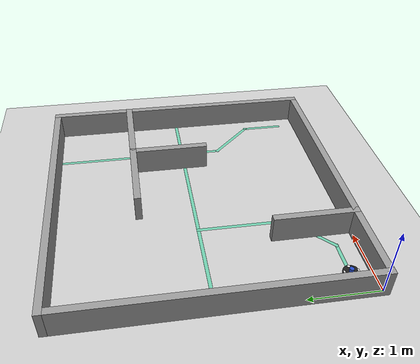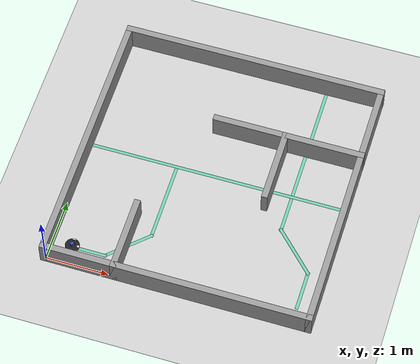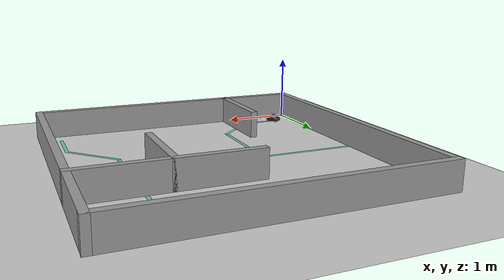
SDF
<sdf version="1.7">
 <world name="default">
  <light name="sun" type="directional">
   <pose>0 0 10 0 -0 0</pose>
   <diffuse>0.8 0.8 0.8 1</diffuse>
   <specular>0.2 0.2 0.2 1</specular>
   <attenuation>
    <range>1000</range>
    <constant>0.9</constant>
    <linear>0.01</linear>
    <quadratic>0.001</quadratic>
   </attenuation>
   <direction>-0.5 0.1 -0.9</direction>
   <spot><inner_angle>0</inner_angle><outer_angle>0</outer_angle><falloff>0</falloff></spot>
  </light>
  <model name="ground_plane">
   <static>1</static>
   <link name="link">
    <collision name="collision">
     <geometry><plane><normal>0 0 1</normal><size>100 100</size></plane></geometry>
     <surface><friction><ode><mu>100</mu><mu2>50</mu2></ode></friction></surface>
    </collision>
    <visual name="visual">
     <cast_shadows>0</cast_shadows>
     <geometry><plane><normal>0 0 1</normal><size>100 100</size></plane></geometry>
     <material>
      <script><uri>file://media/materials/scripts/gazebo.material</uri><name>Gazebo/Grey</name></script>
     </material>
    </visual>
   </link>
  </model>
  <gravity>0 0 -9.8</gravity>
  <magnetic_field>6e-06 2.3e-05 -4.2e-05</magnetic_field>
  <atmosphere type="adiabatic"/>
  <physics type="ode">
   <max_step_size>0.001</max_step_size>
   <real_time_factor>1</real_time_factor>
   <real_time_update_rate>1000</real_time_update_rate>
  </physics>
  <scene><ambient>0.4 0.4 0.4 1</ambient><background>0.7 0.7 0.7 1</background><shadows>1</shadows></scene>
  <audio><device>default</device></audio>
  <spherical_coordinates>
   <surface_model>EARTH_WGS84</surface_model>
   <latitude_deg>0</latitude_deg>
   <longitude_deg>0</longitude_deg>
   <elevation>0</elevation>
   <heading_deg>0</heading_deg>
  </spherical_coordinates>
  <model name="CM">
   <pose>2.06604 2.07657 0 0 -0 0</pose>
   <link name="Wall_0">
    <collision name="Wall_0_Collision">
     <geometry><box><size>4.267 0.1 0.4</size></box></geometry>
     <pose>0 0 0.2 0 -0 0</pose>
    </collision>
    <visual name="Wall_0_Visual">
     <pose>0 0 0.2 0 -0 0</pose>
     <geometry><box><size>4.267 0.1 0.4</size></box></geometry>
     <material>
      <script><uri>file://media/materials/scripts/gazebo.material</uri><name>Gazebo/Grey</name></script>
      <ambient>1 1 1 1</ambient>
     </material>
     <meta><layer>0</layer></meta>
    </visual>
    <pose>2.0835 0 0 0 -0 1.5708</pose>
   </link>
   <link name="Wall_1">
    <collision name="Wall_1_Collision">
     <geometry><box><size>4.267 0.1 0.4</size></box></geometry>
     <pose>0 0 0.2 0 -0 0</pose>
    </collision>
    <visual name="Wall_1_Visual">
     <pose>0 0 0.2 0 -0 0</pose>
     <geometry><box><size>4.267 0.1 0.4</size></box></geometry>
     <material>
      <script><uri>file://media/materials/scripts/gazebo.material</uri><name>Gazebo/Grey</name></script>
      <ambient>1 1 1 1</ambient>
     </material>
     <meta><layer>0</layer></meta>
    </visual>
    <pose>0 2.0835 0 0 -0 3.14159</pose>
   </link>
   <link name="Wall_2">
    <collision name="Wall_2_Collision">
     <geometry><box><size>4.267 0.1 0.4</size></box></geometry>
     <pose>0 0 0.2 0 -0 0</pose>
    </collision>
    <visual name="Wall_2_Visual">
     <pose>0 0 0.2 0 -0 0</pose>
     <geometry><box><size>4.267 0.1 0.4</size></box></geometry>
     <material>
      <script><uri>file://media/materials/scripts/gazebo.material</uri><name>Gazebo/Grey</name></script>
      <ambient>1 1 1 1</ambient>
     </material>
     <meta><layer>0</layer></meta>
    </visual>
    <pose>-2.0835 0 0 0 -0 -1.5708</pose>
   </link>
   <link name="Wall_3">
    <collision name="Wall_3_Collision">
     <geometry><box><size>4.267 0.1 0.4</size></box></geometry>
     <pose>0 0 0.2 0 -0 0</pose>
    </collision>
    <visual name="Wall_3_Visual">
     <pose>0 0 0.2 0 -0 0</pose>
     <geometry><box><size>4.267 0.1 0.4</size></box></geometry>
     <material>
      <script><uri>file://media/materials/scripts/gazebo.material</uri><name>Gazebo/Grey</name></script>
      <ambient>1 1 1 1</ambient>
     </material>
     <meta><layer>0</layer></meta>
    </visual>
    <pose>0 -2.0835 0 0 -0 0</pose>
   </link>
   <link name="Wall_32">
    <collision name="Wall_32_Collision"><geometry><box><size>0.61 0.05 0</size></box></geometry></collision>
    <visual name="Wall_32_Visual">
     <geometry><box><size>0.61 0.05 0</size></box></geometry>
     <material>
      <script><uri>file://media/materials/scripts/gazebo.material</uri><name>Gazebo/Grey</name></script>
      <ambient>0.435294 0.796078 0.67451 1</ambient>
     </material>
     <meta><layer>0</layer></meta>
    </visual>
    <pose>-1.4985 -1.7785 0 0 -0 0</pose>
   </link>
   <link name="Wall_34">
    <collision name="Wall_34_Collision"><geometry><box><size>0.835175 0.05 0</size></box></geometry></collision>
    <visual name="Wall_34_Visual">
     <geometry><box><size>0.835175 0.05 0</size></box></geometry>
     <material>
      <script><uri>file://media/materials/scripts/gazebo.material</uri><name>Gazebo/Grey</name></script>
      <ambient>0.435294 0.796078 0.67451 1</ambient>
     </material>
     <meta><layer>0</layer></meta>
    </visual>
    <pose>-0.9335 -1.5085 0 0 -0 0.758378</pose>
   </link>
   <link name="Wall_36">
    <collision name="Wall_36_Collision"><geometry><box><size>1.33876 0.05 0</size></box></geometry></collision>
    <visual name="Wall_36_Visual">
     <geometry><box><size>1.33876 0.05 0</size></box></geometry>
     <material>
      <script><uri>file://media/materials/scripts/gazebo.material</uri><name>Gazebo/Grey</name></script>
      <ambient>0.435294 0.796078 0.67451 1</ambient>
     </material>
     <meta><layer>0</layer></meta>
    </visual>
    <pose>-0.6485 -0.594 0 0 -0 1.5708</pose>
   </link>
   <link name="Wall_38">
    <collision name="Wall_38_Collision"><geometry><box><size>4.2 0.05 0</size></box></geometry></collision>
    <visual name="Wall_38_Visual">
     <geometry><box><size>4.2 0.05 0</size></box></geometry>
     <material>
      <script><uri>file://media/materials/scripts/gazebo.material</uri><name>Gazebo/Grey</name></script>
      <ambient>0.435294 0.796078 0.67451 1</ambient>
     </material>
     <meta><layer>0</layer></meta>
    </visual>
    <pose>-0.0085 0.0505 0 0 -0 0</pose>
   </link>
   <link name="Wall_40">
    <collision name="Wall_40_Collision"><geometry><box><size>2.676 0.05 0</size></box></geometry></collision>
    <visual name="Wall_40_Visual">
     <geometry><box><size>2.676 0.05 0</size></box></geometry>
     <material>
      <script><uri>file://media/materials/scripts/gazebo.material</uri><name>Gazebo/Grey</name></script>
      <ambient>0.435294 0.796078 0.67451 1</ambient>
     </material>
     <meta><layer>0</layer></meta>
    </visual>
    <pose>1.2175 0.7535 0 0 -0 1.5708</pose>
   </link>
   <link name="Wall_42">
    <collision name="Wall_42_Collision"><geometry><box><size>0.904927 0.05 0</size></box></geometry></collision>
    <visual name="Wall_42_Visual">
     <geometry><box><size>0.904927 0.05 0</size></box></geometry>
     <material>
      <script><uri>file://media/materials/scripts/gazebo.material</uri><name>Gazebo/Grey</name></script>
      <ambient>0.435294 0.796078 0.67451 1</ambient>
     </material>
     <meta><layer>0</layer></meta>
    </visual>
    <pose>1.517 -0.8645 0 0 -0 -0.794496</pose>
   </link>
   <link name="Wall_44">
    <collision name="Wall_44_Collision"><geometry><box><size>0.659 0.05 0</size></box></geometry></collision>
    <visual name="Wall_44_Visual">
     <geometry><box><size>0.659 0.05 0</size></box></geometry>
     <material>
      <script><uri>file://media/materials/scripts/gazebo.material</uri><name>Gazebo/Grey</name></script>
      <ambient>0.435294 0.796078 0.67451 1</ambient>
     </material>
     <meta><layer>0</layer></meta>
    </visual>
    <pose>1.8165 -1.474 0 0 -0 -1.5708</pose>
   </link>
   <link name="Wall_5">
    <collision name="Wall_5_Collision">
     <geometry><box><size>1.219 0.1 0.4</size></box></geometry>
     <pose>0 0 0.2 0 -0 0</pose>
    </collision>
    <visual name="Wall_5_Visual">
     <pose>0 0 0.2 0 -0 0</pose>
     <geometry><box><size>1.219 0.1 0.4</size></box></geometry>
     <material>
      <script><uri>file://media/materials/scripts/gazebo.material</uri><name>Gazebo/Grey</name></script>
      <ambient>1 1 1 1</ambient>
     </material>
     <meta><layer>0</layer></meta>
    </visual>
    <pose>-0.9645 -1.524 0 0 -0 1.5708</pose>
   </link>
   <link name="Wall_7">
    <collision name="Wall_7_Collision">
     <geometry><box><size>2.438 0.1 0.4</size></box></geometry>
     <pose>0 0 0.2 0 -0 0</pose>
    </collision>
    <visual name="Wall_7_Visual">
     <pose>0 0 0.2 0 -0 0</pose>
     <geometry><box><size>2.438 0.1 0.4</size></box></geometry>
     <material>
      <script><uri>file://media/materials/scripts/gazebo.material</uri><name>Gazebo/Grey</name></script>
      <ambient>1 1 1 1</ambient>
     </material>
     <meta><layer>0</layer></meta>
    </visual>
    <pose>0.9145 0.8645 0 0 -0 0</pose>
   </link>
   <link name="Wall_9">
    <collision name="Wall_9_Collision">
     <geometry><box><size>1.219 0.1 0.4</size></box></geometry>
     <pose>0 0 0.2 0 -0 0</pose>
    </collision>
    <visual name="Wall_9_Visual">
     <pose>0 0 0.2 0 -0 0</pose>
     <geometry><box><size>1.219 0.1 0.4</size></box></geometry>
     <material>
      <script><uri>file://media/materials/scripts/gazebo.material</uri><name>Gazebo/Grey</name></script>
      <ambient>1 1 1 1</ambient>
     </material>
     <meta><layer>0</layer></meta>
    </visual>
    <pose>0.8645 0.305 0 0 -0 1.5708</pose>
   </link>
   <static>1</static>
  </model>
  <model name="eced3901bot">
   <static>0</static>
   <pose>0.324801 0.301249 -1.6e-05 -5.9e-05 -0.001461 -5e-06</pose>
   <link name="base_footprint">
    <inertial>
     <inertia><ixx>1</ixx><ixy>0</ixy><ixz>0</ixz><iyy>1</iyy><iyz>0</iyz><izz>1</izz></inertia>
     <mass>1</mass>
    </inertial>
   </link>
   <link name="base_link">
    <inertial>
     <pose>0 0 0.035 0 -0 0</pose>
     <inertia>
      <ixx>0.723974</ixx>
      <ixy>4.6864e-10</ixy>
      <ixz>-1.09526e-08</ixz>
      <iyy>0.723974</iyy>
      <iyz>2.85826e-09</iyz>
      <izz>0.65305</izz>
     </inertia>
     <mass>0.825735</mass>
    </inertial>
    <collision name="base_collision">
     <pose>0 0 0.2 0 -0 0</pose>
     <geometry><box><size>0.22 0.22 0.11</size></box></geometry>
    </collision>
    <visual name="base_visual">
     <pose>0 0 0.035 0 -0 0</pose>
     <geometry><cylinder><radius>0.11</radius><length>0.0364</length></cylinder></geometry>
     <material>
      <script><uri>file://media/materials/scripts/gazebo.material</uri><name>Gazebo/Black</name></script>
     </material>
    </visual>
    <visual name="base_pointfwd">
     <pose>0.09 0 0.053 0 -0 0</pose>
     <geometry><cylinder><radius>0.02</radius><length>0.001</length></cylinder></geometry>
     <material>
      <script><uri>file://media/materials/scripts/gazebo.material</uri><name>Gazebo/White</name></script>
     </material>
    </visual>
   </link>
   <link name="imu_link">
    <sensor name="bmb_imu" type="imu">
     <always_on>1</always_on>
     <update_rate>100</update_rate>
     <visualize>1</visualize>
     <imu>
      <angular_velocity>
       <x><noise type="gaussian"><mean>0</mean><stddev>0.0002</stddev></noise></x>
       <y><noise type="gaussian"><mean>0</mean><stddev>0.0002</stddev></noise></y>
       <z><noise type="gaussian"><mean>0</mean><stddev>0.0002</stddev></noise></z>
      </angular_velocity>
      <linear_acceleration>
       <x><noise type="gaussian"><mean>0</mean><stddev>0.017</stddev></noise></x>
       <y><noise type="gaussian"><mean>0</mean><stddev>0.017</stddev></noise></y>
       <z><noise type="gaussian"><mean>0</mean><stddev>0.017</stddev></noise></z>
      </linear_acceleration>
      <orientation>
       <x><noise type="gaussian"><mean>0.0</mean><stddev>2e-3</stddev></noise></x>
       <y><noise type="gaussian"><mean>0.0</mean><stddev>2e-3</stddev></noise></y>
       <z><noise type="gaussian"><mean>0.0</mean><stddev>2e-3</stddev></noise></z>
      </orientation>
     </imu>
     <plugin name="basic_mobile_bot_imu" filename="libgazebo_ros_imu_sensor.so">
      <initial_orientation_as_reference>0</initial_orientation_as_reference>
      <frame_name>imu_link</frame_name>
      <ros><namespace>/imu</namespace><remapping>~/out:=data</remapping></ros>
     </plugin>
    </sensor>
    <inertial>
     <inertia><ixx>1</ixx><ixy>0</ixy><ixz>0</ixz><iyy>1</iyy><iyz>0</iyz><izz>1</izz></inertia>
     <mass>1</mass>
    </inertial>
   </link>
   <link name="lidar_link">
    <inertial>
     <pose>0 0 0.0815 0 -0 0</pose>
     <inertia><ixx>0.001</ixx><ixy>0</ixy><ixz>0</ixz><iyy>0.001</iyy><iyz>0</iyz><izz>0.001</izz></inertia>
     <mass>0.114</mass>
    </inertial>
    <collision name="lidar_collision">
     <pose>0 0 0.0815 0 -0 0</pose>
     <geometry><cylinder><radius>0.03</radius><length>0.057</length></cylinder></geometry>
    </collision>
    <visual name="lidar_visual">
     <pose>0 0 0.0815 0 -0 0</pose>
     <geometry><cylinder><radius>0.03</radius><length>0.057</length></cylinder></geometry>
     <material>
      <script><uri>file://media/materials/scripts/gazebo.material</uri><name>Gazebo/Blue</name></script>
     </material>
    </visual>
    <sensor name="lidar" type="ray">
     <pose>0 0 0.11 0 -0 0</pose>
     <always_on>1</always_on>
     <visualize>1</visualize>
     <update_rate>5</update_rate>
     <ray>
      <scan>
       <horizontal>
        <samples>360</samples>
        <resolution>1</resolution>
        <min_angle>0</min_angle>
        <max_angle>6.28</max_angle>
       </horizontal>
       <vertical><samples>1</samples><min_angle>0</min_angle><max_angle>0</max_angle></vertical>
      </scan>
      <range><min>0.12</min><max>5</max><resolution>0.015</resolution></range>
      <noise><type>gaussian</type><mean>0</mean><stddev>0.01</stddev></noise>
     </ray>
     <plugin name="scan" filename="libgazebo_ros_ray_sensor.so">
      <ros><remapping>~/out:=scan</remapping></ros>
      <output_type>sensor_msgs/LaserScan</output_type>
      <frame_name>lidar_link</frame_name>
     </plugin>
    </sensor>
   </link>
   <link name="drivewhl_l_link">
    <pose>0 0.095 0.035 3.14159 1.57079 -1.57079</pose>
    <inertial>
     <inertia>
      <ixx>0.00181582</ixx>
      <ixy>-9.3392e-12</ixy>
      <ixz>1.04909e-11</ixz>
      <iyy>0.00329221</iyy>
      <iyz>5.75694e-11</iyz>
      <izz>0.00181582</izz>
     </inertia>
     <mass>0.0284989</mass>
    </inertial>
    <collision name="drivewhl_l_collision">
     <geometry><cylinder><radius>0.035</radius><length>0.023</length></cylinder></geometry>
    </collision>
    <visual name="drivewhl_l_visual">
     <geometry><cylinder><radius>0.035</radius><length>0.023</length></cylinder></geometry>
     <material>
      <script><uri>file://media/materials/scripts/gazebo.material</uri><name>Gazebo/White</name></script>
     </material>
    </visual>
   </link>
   <link name="drivewhl_r_link">
    <pose>0 -0.095 0.035 3.14159 1.57079 -1.57079</pose>
    <inertial>
     <inertia>
      <ixx>0.00181582</ixx>
      <ixy>-9.3392e-12</ixy>
      <ixz>1.04909e-11</ixz>
      <iyy>0.00329221</iyy>
      <iyz>5.75694e-11</iyz>
      <izz>0.00181582</izz>
     </inertia>
     <mass>0.0284989</mass>
    </inertial>
    <collision name="drivewhl_r_collision">
     <geometry><cylinder><radius>0.035</radius><length>0.023</length></cylinder></geometry>
    </collision>
    <visual name="drivewhl_r_visual">
     <geometry><cylinder><radius>0.035</radius><length>0.023</length></cylinder></geometry>
     <material>
      <script><uri>file://media/materials/scripts/gazebo.material</uri><name>Gazebo/White</name></script>
     </material>
    </visual>
   </link>
   <link name="front_caster">
    <pose>0.09 0 0.012 0 -0 0</pose>
    <inertial>
     <inertia><ixx>0.001</ixx><ixy>0</ixy><ixz>0</ixz><iyy>0.001</iyy><iyz>0</iyz><izz>0.001</izz></inertia>
     <mass>0.005</mass>
    </inertial>
    <collision name="collision">
     <geometry><sphere><radius>0.012</radius></sphere></geometry>
     <surface>
      <friction><ode><mu>0.01</mu><mu2>0.01</mu2><slip1>1</slip1><slip2>1</slip2></ode></friction>
     </surface>
    </collision>
    <visual name="front_caster_visual">
     <geometry><sphere><radius>0.012</radius></sphere></geometry>
     <material>
      <script><uri>file://media/materials/scripts/gazebo.material</uri><name>Gazebo/White</name></script>
     </material>
    </visual>
   </link>
   <link name="back_caster">
    <pose>-0.09 0 0.015 0 -0 0</pose>
    <inertial>
     <inertia><ixx>0.001</ixx><ixy>0</ixy><ixz>0</ixz><iyy>0.001</iyy><iyz>0</iyz><izz>0.001</izz></inertia>
     <mass>0.005</mass>
    </inertial>
    <collision name="collision">
     <geometry><sphere><radius>0.012</radius></sphere></geometry>
     <surface>
      <friction><ode><mu>0.01</mu><mu2>0.01</mu2><slip1>1</slip1><slip2>1</slip2></ode></friction>
     </surface>
    </collision>
    <visual name="back_caster_visual">
     <geometry><sphere><radius>0.012</radius></sphere></geometry>
     <material>
      <script><uri>file://media/materials/scripts/gazebo.material</uri><name>Gazebo/White</name></script>
     </material>
    </visual>
   </link>
   <joint name="base_joint" type="fixed"><parent>base_footprint</parent><child>base_link</child></joint>
   <joint name="drivewhl_l_joint" type="revolute">
    <parent>base_link</parent>
    <child>drivewhl_l_link</child>
    <axis>
     <xyz>0 0 1</xyz>
     <limit><lower>-1e+16</lower><upper>1e+16</upper></limit>
     <dynamics><spring_reference>0</spring_reference><spring_stiffness>0</spring_stiffness></dynamics>
    </axis>
   </joint>
   <joint name="drivewhl_r_joint" type="revolute">
    <parent>base_link</parent>
    <child>drivewhl_r_link</child>
    <axis>
     <xyz>0 0 1</xyz>
     <limit><lower>-1e+16</lower><upper>1e+16</upper></limit>
     <dynamics><spring_reference>0</spring_reference><spring_stiffness>0</spring_stiffness></dynamics>
    </axis>
   </joint>
   <joint name="caster_joint_front" type="ball"><parent>base_link</parent><child>front_caster</child></joint>
   <joint name="caster_joint_back" type="ball"><parent>base_link</parent><child>back_caster</child></joint>
   <joint name="imu_joint" type="fixed"><parent>base_link</parent><child>imu_link</child></joint>
   <joint name="lidar_joint" type="fixed"><parent>base_link</parent><child>lidar_link</child></joint>
   <plugin name="basic_mobile_bot_diff_drive" filename="libgazebo_ros_diff_drive.so">
    <update_rate>30</update_rate>
    <left_joint>drivewhl_l_joint</left_joint>
    <right_joint>drivewhl_r_joint</right_joint>
    <wheel_separation>0.19</wheel_separation>
    <wheel_diameter>0.07</wheel_diameter>
    <max_wheel_torque>20</max_wheel_torque>
    <max_wheel_acceleration>1.0</max_wheel_acceleration>
    <command_topic>cmd_vel</command_topic>
    <publish_odom>1</publish_odom>
    <publish_odom_tf>1</publish_odom_tf>
    <publish_wheel_tf>0</publish_wheel_tf>
    <odometry_topic>odom</odometry_topic>
    <odometry_frame>odom</odometry_frame>
    <robot_base_frame>base_footprint</robot_base_frame>
    <odometry_source>0</odometry_source>
    <ros><remapping>odom:=wheel/odometry</remapping></ros>
   </plugin>
   <plugin name="basic_mobile_bot_joint_state" filename="libgazebo_ros_joint_state_publisher.so">
    <ros><remapping>~/out:=joint_states</remapping></ros>
    <update_rate>30</update_rate>
    <joint_name>drivewhl_l_joint</joint_name>
    <joint_name>drivewhl_r_joint</joint_name>
   </plugin>
  </model>
 </world>
</sdf>
